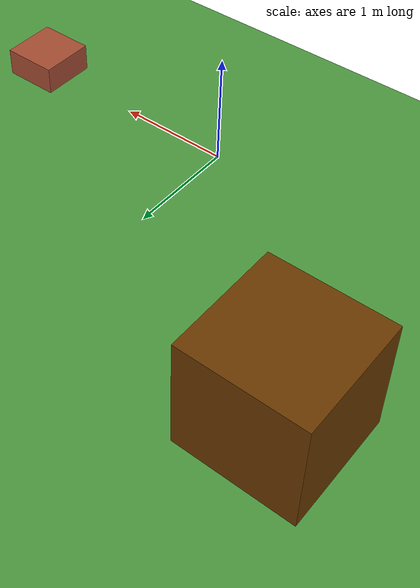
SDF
<?xml version="1.0" ?>
<sdf version="1.5">
    <world name="default">

        <physics type="ode">
        <max_step_size>0.0002</max_step_size>
        <real_time_factor>1</real_time_factor>
        <real_time_update_rate>5000</real_time_update_rate>
        <gravity>0 0 -9.81</gravity>
            <ode>
                <solver>
                <type>quick</type>
                <iters>50</iters>
                <sor>1.3</sor>
                </solver>
                <constraints>
                <cfm>0.0</cfm>
                <erp>0.2</erp>
                <contact_max_correcting_vel>10.0</contact_max_correcting_vel>
                <contact_surface_layer>0.001</contact_surface_layer>
                </constraints>
            </ode>
        </physics>

        <scene>
        <sky>
            <clouds>
                <speed>12</speed>
            </clouds>
        </sky>
        </scene>
        <!-- A global light source -->
        <include>
            <uri>model://sun</uri>
        </include>
        <!-- A ground plane -->
        <include>
            <uri>model://ground_plane</uri>
        </include>

 <model name='ground_plane_1'>
      <static>1</static>
      <link name='link'>
        <collision name='collision'>
          <geometry>
            <plane>
              <normal>0 0 1</normal>
              <size>100 100</size>
            </plane>
          </geometry>
          <surface>
            <friction>
              <ode>
                <mu>0.8</mu>
                <mu2>0.8</mu2>
                <fdir1>1 0 0</fdir1>
                <slip1>0.0</slip1>
                <slip2>0.0</slip2>
              </ode>
            </friction>
            <bounce/>
            <contact>
              <ode>
                <kp>5000</kp> <!--5000 is pretty ridiculously malleable, like a really underinflated yoga ball, ; 500,000 is good for truly solid objects like metals-->>
                <kd>0</kd> <!--0 represents a perfectly elastic collision (no kinetic energy is lost during collision) ; 100 is more like dropping a block of wood on the ground-->>
                <min_depth>1.0</min_depth>
                <max_vel>100</max_vel>
              </ode>
            </contact>
          </surface>
          <max_contacts>10</max_contacts>
        </collision>
        <visual name='visual'>
          <cast_shadows>0</cast_shadows>
          <geometry>
            <plane>
              <normal>0 0 1</normal>
              <size>100 100</size>
            </plane>
          </geometry>
          <material>
            <script>
              <uri>file://media/materials/scripts/gazebo.material</uri>
              <name>Gazebo/Grass</name>
            </script>
            <ambient>1 1 1 1</ambient>
          </material>
        </visual>
        <velocity_decay>
          <linear>0</linear>
          <angular>0</angular>
        </velocity_decay>
        <self_collide>0</self_collide>
        <kinematic>0</kinematic>
        <gravity>1</gravity>
      </link>
    </model>

        <!-- environment blocks, obstacles or stairs -->
        <model name="static_environment">
        <static>true</static>
            <link name="static_box">
                <pose>-2 2 0.5 0 0 0</pose>
                <collision name="static_box_collision">
                    <geometry>
                        <box>
                            <size>1 1 1</size>
                        </box>
                    </geometry>
                </collision>
                <visual name="static_box_visual">
                    <geometry>
                        <box>
                            <size>1 1 1</size>
                        </box>
                    </geometry>
                    <material>
                        <ambient>0.2 0.2 0.2 1.0</ambient>
                        <diffuse>.421 0.225 0.0 1.0</diffuse>
                    </material>
                </visual>
            </link>
        </model>

<model name="friction_box">
      <pose>2 0 0 0 0 0</pose> <!-- 位置和姿态 -->
      <static>false</static> <!-- 设置物体是否静态，这里设置为非静态 -->

      <!-- 添加碰撞信息 -->
      <link name="link">
        <collision name="collision">
          <geometry>
            <box>
              <size>0.5 0.5 0.5</size> <!-- 盒子的大小 -->
            </box>
          </geometry>
          <surface>
            <friction>
              <ode>
                <mu>0.35</mu> <!-- 设置主要摩擦系数 -->
                <mu2>0.35</mu2> <!-- 设置第二摩擦系数 -->
              </ode>
            </friction>
          </surface>
        </collision>
        <!-- 可视化信息 -->
        <visual name="visual">
          <geometry>
            <box>
              <size>0.5 0.5 0.5</size> <!-- 盒子的大小 -->
            </box>
          </geometry>
          <material>
            <script>
              <uri>file://media/materials/scripts/gazebo.material</uri>
              <name>Gazebo/Bricks</name>
            </script>
          </material>
        </visual>

<inertial>
          <mass>9</mass> <!-- 设置物体的质量，单位为千克 -->
          <inertia>
            <ixx>1</ixx> <!-- 惯性矩阵的各项值 -->
            <iyy>1</iyy>
            <izz>1</izz>
            <ixy>0</ixy>
            <ixz>0</ixz>
            <iyz>0</iyz>
          </inertia>
        </inertial>

      </link>
    </model>

    </world>
</sdf>
